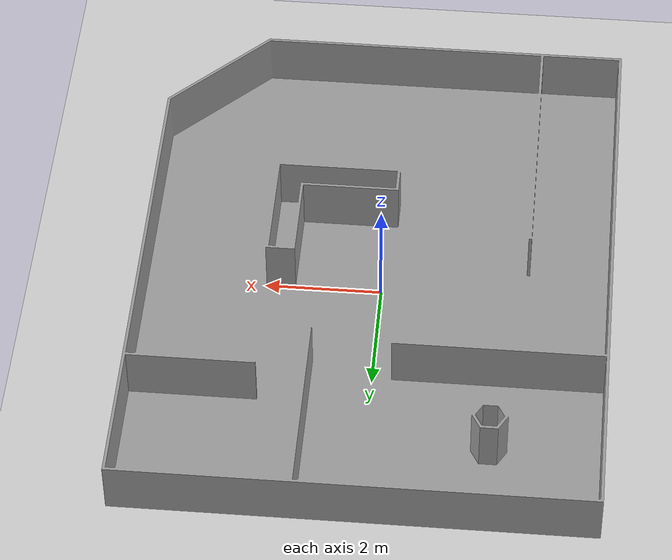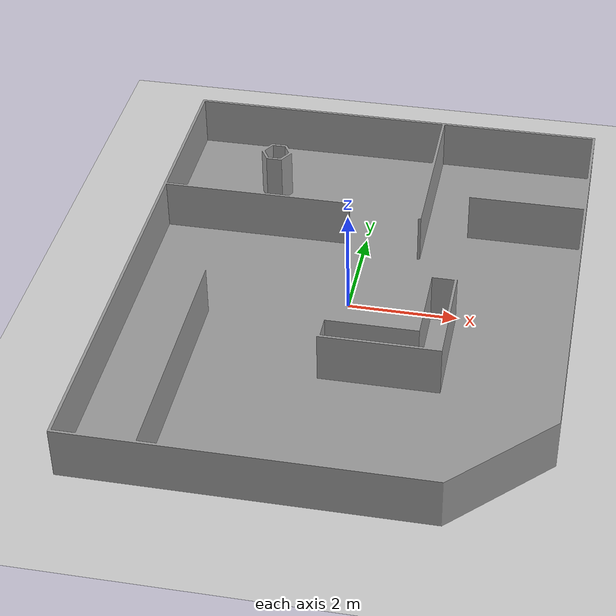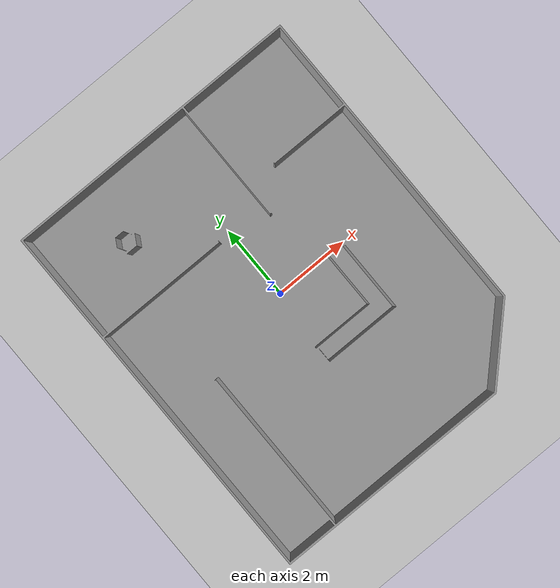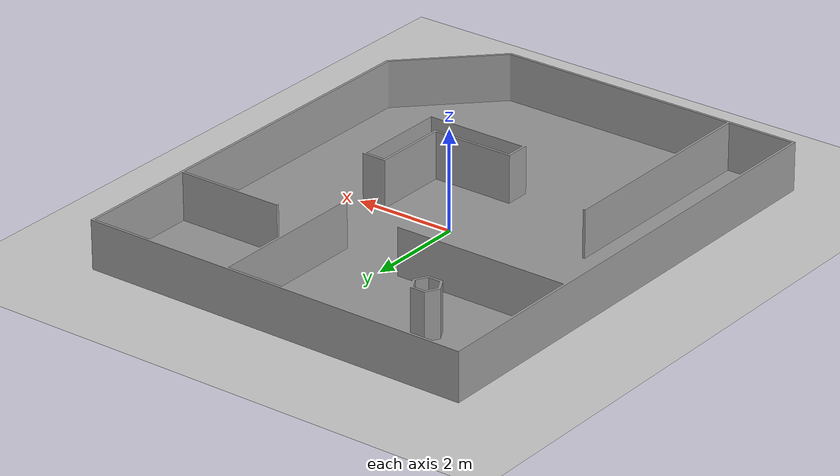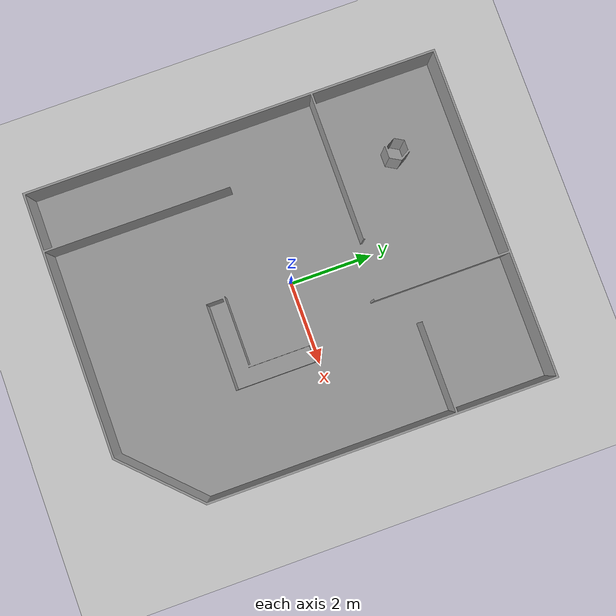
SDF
<sdf version='1.4'>
  <world name='default'>
    <!-- A global light source -->
    <include>
      <uri>model://sun</uri>
    </include>

    <!-- A ground plane -->
    <include>
      <uri>model://ground_plane</uri>
    </include>

    <physics type="ode">
      <real_time_update_rate>1000.0</real_time_update_rate>
      <max_step_size>0.001</max_step_size>
      <real_time_factor>1</real_time_factor>
      <ode>
        <solver>
          <type>quick</type>
          <iters>150</iters>
          <precon_iters>0</precon_iters>
          <sor>1.400000</sor>
          <use_dynamic_moi_rescaling>1</use_dynamic_moi_rescaling>
        </solver>
        <constraints>
          <cfm>0.00001</cfm>
          <erp>0.2</erp>
          <contact_max_correcting_vel>2000.000000</contact_max_correcting_vel>
          <contact_surface_layer>0.01000</contact_surface_layer>
        </constraints>
      </ode>
    </physics>

    <!-- Load world -->
    <include>
      <uri>model://opti_map</uri>
    </include>

    <scene>
      <ambient>0.4 0.4 0.4 1</ambient>
      <background>0.7 0.7 0.7 1</background>
      <shadows>true</shadows>
    </scene>

    <gui fullscreen='0'>
      <camera name='user_camera'>
        <pose>0.8 0.0 20.0 0 1.5708 1.5708</pose>
        <view_controller>orbit</view_controller>
      </camera>
    </gui>
    <plugin filename="libcollision_map_creator.so" name="collision_map_creator"/>
  </world>
</sdf>

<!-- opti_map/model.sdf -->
<sdf version='1.6'>
  <model name='opti_map'>
  <pose frame=''>0 0 0 0 0 0</pose>
    <link name='link_0'>
      <pose frame=''>0 0 0 0 0 0</pose>
      <inertial>
        <mass>100</mass>
        <inertia>
          <ixx>0.166667</ixx>
          <ixy>0</ixy>
          <ixz>0</ixz>
          <iyy>0.166667</iyy>
          <iyz>0</iyz>
          <izz>0.166667</izz>
        </inertia>
        <pose frame=''>0 0 0 0 -0 0</pose>
      </inertial>
      <self_collide>0</self_collide>
      <kinematic>0</kinematic>
      <gravity>1</gravity>
      <visual name='visual'>
        <pose frame=''>0 0 0 0 0 0</pose>
        <geometry>
          <mesh>
            <uri>model://meshes/opti_map.STL</uri>
            <scale>1 1 1</scale>
          </mesh>
        </geometry>
        <material>
          <lighting>1</lighting>
          <script>
            <uri>file://media/materials/scripts/gazebo.material</uri>
            <name>Gazebo/Grey</name>
          </script>
          <ambient>0.3 0.3 0.3 1</ambient>
          <diffuse>0.7 0.7 0.7 1</diffuse>
          <specular>0.01 0.01 0.01 1</specular>
          <emissive>0 0 0 1</emissive>
          <shader type='vertex'>
            <normal_map>__default__</normal_map>
          </shader>
        </material>
        <cast_shadows>1</cast_shadows>
        <transparency>0</transparency>
      </visual>
      <collision name='collision'>
        <laser_retro>0</laser_retro>
        <max_contacts>10</max_contacts>
        <pose frame=''>0 0 0 0 -0 0</pose>
        <geometry>
          <mesh>
            <uri>model://meshes/opti_map.STL</uri>
          </mesh>
        </geometry>
        <surface>
          <friction>
            <ode>
              <mu>0.1</mu>
              <mu2>0.1</mu2>
              <fdir1>0 0 0</fdir1>
              <slip1>0</slip1>
              <slip2>0</slip2>
            </ode>
          </friction>
        </surface>
      </collision>
    </link>
    <static>1</static>
    <allow_auto_disable>1</allow_auto_disable>
  </model>
</sdf>
